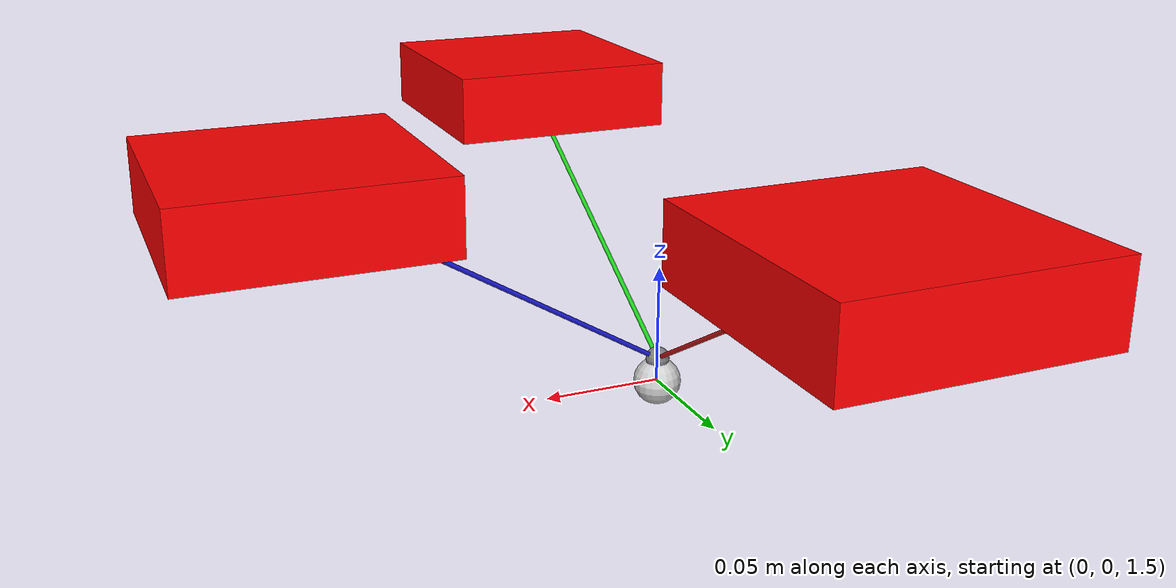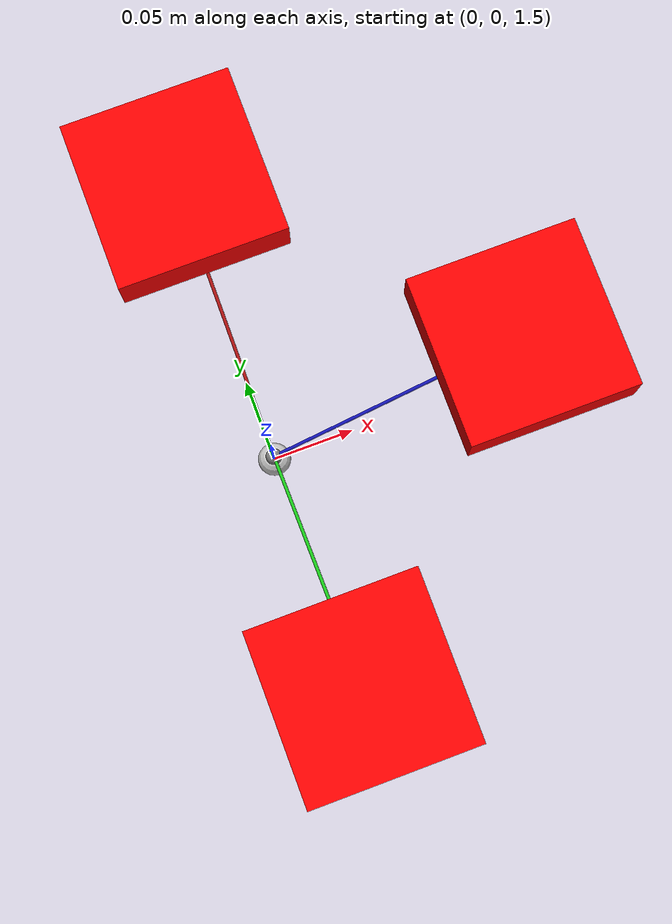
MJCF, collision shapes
<mujoco>
    <compiler angle="radian" meshdir="assets/" discardvisual="false"/>
    <option timestep="0.004" gravity="0 0 -9.81" solver="Newton"  jacobian="dense" iterations="1" ls_iterations="4" >
        <flag eulerdamp="disable"/>
    </option>

    <visual>
        <global azimuth="-20" elevation="-20" ellipsoidinertia="true" offwidth="1920" offheight="1080"/>
        <headlight ambient="0.3 0.3 0.3" diffuse="0.6 0.6 0.6" specular="0 0 0" />
        <rgba haze="0.15 0.25 0.35 1" />
        <scale jointlength="0" jointwidth="0"/>
    </visual>

    <default>
        <default class="cf2">
            <site group="5" />
            <default class="visual">
                <geom type="mesh" contype="0" conaffinity="0" group="2" />
            </default>
            <default class="collision">
                <geom type="mesh" group="3" />
            </default>
        </default>
    </default>

    <asset>
        <texture type="skybox" builtin="gradient" rgb1="0.3 0.5 0.7" rgb2="0 0 0" width="512"
            height="3072" />
        <texture type="2d" name="groundplane" builtin="checker" mark="edge" rgb1="0.2 0.3 0.4"
            rgb2="0.1 0.2 0.3" markrgb="0.8 0.8 0.8" width="300" height="300" />
        <material name="polished_plastic" rgba="0.631 0.659 0.678 1" />
        <material name="polished_gold" rgba="0.969 0.878 0.6 1" />
        <material name="medium_gloss_plastic" rgba="0.109 0.184 0 1" />
        <material name="propeller_plastic" rgba="0.792 0.82 0.933 1" />
        <material name="white" />
        <material name="body_frame_plastic" rgba="0.102 0.102 0.102 1" />
        <material name="burnished_chrome" rgba="0.898 0.898 0.898 1" />
        <material name="groundplane" texture="groundplane" texuniform="true" texrepeat="10 10"
            reflectance="0" />
        <mesh name="cf2_0" file="cf2_0.obj" />
        <mesh name="cf2_1" file="cf2_1.obj" />
        <mesh name="cf2_2" file="cf2_2.obj" />
        <mesh name="cf2_3" file="cf2_3.obj" />
        <mesh name="cf2_4" file="cf2_4.obj" />
        <mesh name="cf2_5" file="cf2_5.obj" />
        <mesh name="cf2_6" file="cf2_6.obj" />

    </asset>

    <worldbody>
        <geom name="floor" size="0 0 0.05" type="plane" material="groundplane" />
        <light pos="0 0 1.5" dir="0 0 -1" directional="true" />

        <site name="goal_marker" pos="0 0 1.5" size="0.01" type="sphere" rgba="0 1 0 0.7"/>

        <!-- Payload start site-->

            <body name="payload" pos="0.0 0.0 1.5" >
            <camera name="track" pos="-0.7 0 0.5" quat="0.601501 0.371748 -0.371748 -0.601501"
                mode="trackcom" />
            <joint type="free" name="payload_joint" actuatorfrclimited="false" damping="0.00001"/>
            <geom size="0.01" type="sphere" mass="0.01" rgba="0.8 0.8 0.8 1" />
            <site name="payload_s" pos="0 0 0.01" />
            </body>

        <body
            name="q0_container"
            pos="0 -0.15 1.6"
            >

            <joint type="free" name="q0_joint" actuatorfrclimited="false" />

            <site name="q0_attachment" pos="0 0 0" group="5"/>
            <body
                name="q0_cf2"
                childclass="cf2"
                pos="0 0 -0.0015"
                >
                <inertial
                    pos="0 0 0"
                    mass="0.034"
                    diaginertia="1.65717e-05 1.66556e-05 2.92617e-05" />

                <geom
                    class="visual"
                    material="propeller_plastic"
                    mesh="cf2_0" />
                <geom
                    class="visual"
                    material="medium_gloss_plastic"
                    mesh="cf2_1" />
                <geom
                    class="visual"
                    material="polished_gold"
                    mesh="cf2_2" />
                <geom
                    class="visual"
                    material="polished_plastic"
                    mesh="cf2_3" />
                <geom
                    class="visual"
                    material="burnished_chrome"
                    mesh="cf2_4" />
                <geom
                    class="visual"
                    material="body_frame_plastic"
                    mesh="cf2_5" />
                <geom
                    class="visual"
                    material="white"
                    mesh="cf2_6" />
               <geom class="collision" type="box" pos="0 0 0" size="0.05 0.05 0.015" group="3" rgba="1 0 0 0.5" />
                <site
                    name="q0_imu"
                    pos="0 0 0" />
                <site
                    name="q0_thrust1"
                    pos="0.032527 -0.032527 0" />
                <site
                    name="q0_thrust2"
                    pos="-0.032527 -0.032527 0" />
                <site
                    name="q0_thrust3"
                    pos="-0.032527 0.032527 0" />
                <site
                    name="q0_thrust4"
                    pos="0.032527 0.032527 0" />

            </body>
        </body>

        <body
            name="q1_container"
            pos="0 0.15 1.6"
            >

            <joint type="free" name="q1_joint" actuatorfrclimited="false" />

            <site name="q1_attachment" pos="0 0 0" group="5"/>
            <body
                name="q1_cf2"
                childclass="cf2"
                pos="0 0 -0.0015"
                >
                <inertial
                    pos="0 0 0"
                    mass="0.034"
                    diaginertia="1.65717e-05 1.66556e-05 2.92617e-05" />

                <geom
                    class="visual"
                    material="propeller_plastic"
                    mesh="cf2_0" />
                <geom
                    class="visual"
                    material="medium_gloss_plastic"
                    mesh="cf2_1" />
                <geom
                    class="visual"
                    material="polished_gold"
                    mesh="cf2_2" />
                <geom
                    class="visual"
                    material="polished_plastic"
                    mesh="cf2_3" />
                <geom
                    class="visual"
                    material="burnished_chrome"
                    mesh="cf2_4" />
                <geom
                    class="visual"
                    material="body_frame_plastic"
                    mesh="cf2_5" />
                <geom
                    class="visual"
                    material="white"
                    mesh="cf2_6" />
                <geom class="collision" type="box" pos="0 0 0" size="0.05 0.05 0.015" group="3" rgba="1 0 0 0.5" />
                <site
                    name="q1_imu"
                    pos="0 0 0" />
                <site
                    name="q1_thrust1"
                    pos="0.032527 -0.032527 0" />
                <site
                    name="q1_thrust2"
                    pos="-0.032527 -0.032527 0" />
                <site
                    name="q1_thrust3"
                    pos="-0.032527 0.032527 0" />
                <site
                    name="q1_thrust4"
                    pos="0.032527 0.032527 0" />

            </body>
        </body>

        <body
            name="q2_container"
            pos="0.15 0 1.6"
            >

            <joint type="free" name="q2_joint" actuatorfrclimited="false" />

            <site name="q2_attachment" pos="0 0 0" group="5"/>
            <body
                name="q2_cf2"
                childclass="cf2"
                pos="0 0 -0.0015"
                >
                <inertial
                    pos="0 0 0"
                    mass="0.034"
                    diaginertia="1.65717e-05 1.66556e-05 2.92617e-05" />

                <geom
                    class="visual"
                    material="propeller_plastic"
                    mesh="cf2_0" />
                <geom
                    class="visual"
                    material="medium_gloss_plastic"
                    mesh="cf2_1" />
                <geom
                    class="visual"
                    material="polished_gold"
                    mesh="cf2_2" />
                <geom
                    class="visual"
                    material="polished_plastic"
                    mesh="cf2_3" />
                <geom
                    class="visual"
                    material="burnished_chrome"
                    mesh="cf2_4" />
                <geom
                    class="visual"
                    material="body_frame_plastic"
                    mesh="cf2_5" />
                <geom
                    class="visual"
                    material="white"
                    mesh="cf2_6" />
                <geom class="collision" type="box" pos="0 0 0" size="0.05 0.05 0.015" group="3" rgba="1 0 0 0.5" />
                <site
                    name="q2_imu"
                    pos="0 0 0" />
                <site
                    name="q2_thrust1"
                    pos="0.032527 -0.032527 0" />
                <site
                    name="q2_thrust2"
                    pos="-0.032527 -0.032527 0" />
                <site
                    name="q2_thrust3"
                    pos="-0.032527 0.032527 0" />
                <site
                    name="q2_thrust4"
                    pos="0.032527 0.032527 0" />

            </body>
        </body>
    </worldbody>

    <contact>

    </contact>

    <tendon>

                <spatial name="q0_tendon" limited="true" range="0 0.3" width="0.001" rgba="0.1 0.8 0.1 1">
                    <site site="q0_attachment" />
                    <site site="payload_s" />
                </spatial>

                <spatial name="q1_tendon" limited="true" range="0 0.3" width="0.001" rgba="0.8 0.1 0.1 1">
                    <site site="q1_attachment" />
                    <site site="payload_s" />
                </spatial>

                <spatial name="q2_tendon" limited="true" range="0 0.3" width="0.001" rgba="0.1 0.1 0.8 1">
                    <site site="q2_attachment" />
                    <site site="payload_s" />
                </spatial>

    </tendon>

    <actuator>
        <general name="q0_thrust1" class="cf2" site="q0_thrust1" ctrlrange="0 0.14" gear="0 0 1 0 0 6e-06" />
<general name="q0_thrust2" class="cf2" site="q0_thrust2" ctrlrange="0 0.14" gear="0 0 1 0 0 -6e-06" />
<general name="q0_thrust3" class="cf2" site="q0_thrust3" ctrlrange="0 0.14" gear="0 0 1 0 0 6e-06" />
<general name="q0_thrust4" class="cf2" site="q0_thrust4" ctrlrange="0 0.14" gear="0 0 1 0 0 -6e-06" />
<general name="q1_thrust1" class="cf2" site="q1_thrust1" ctrlrange="0 0.14" gear="0 0 1 0 0 6e-06" />
<general name="q1_thrust2" class="cf2" site="q1_thrust2" ctrlrange="0 0.14" gear="0 0 1 0 0 -6e-06" />
<general name="q1_thrust3" class="cf2" site="q1_thrust3" ctrlrange="0 0.14" gear="0 0 1 0 0 6e-06" />
<general name="q1_thrust4" class="cf2" site="q1_thrust4" ctrlrange="0 0.14" gear="0 0 1 0 0 -6e-06" />
<general name="q2_thrust1" class="cf2" site="q2_thrust1" ctrlrange="0 0.14" gear="0 0 1 0 0 6e-06" />
<general name="q2_thrust2" class="cf2" site="q2_thrust2" ctrlrange="0 0.14" gear="0 0 1 0 0 -6e-06" />
<general name="q2_thrust3" class="cf2" site="q2_thrust3" ctrlrange="0 0.14" gear="0 0 1 0 0 6e-06" />
<general name="q2_thrust4" class="cf2" site="q2_thrust4" ctrlrange="0 0.14" gear="0 0 1 0 0 -6e-06" />

    </actuator>

</mujoco>
